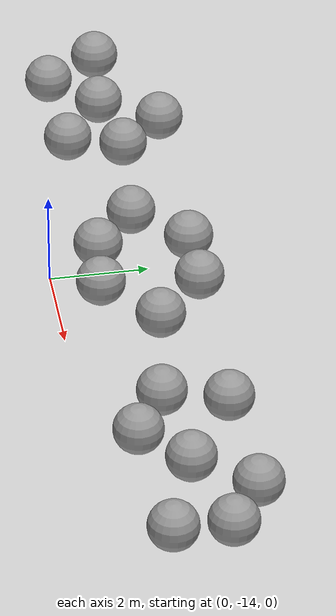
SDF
<sdf version="1.6">
 <world name="default">
  <model name="ground_plane">
   <static>1</static>
   <link name="link">
    <collision name="collision">
     <geometry><plane><normal>0 0 1</normal><size>100 100</size></plane></geometry>
     <surface>
      <contact><collide_bitmask>65535</collide_bitmask></contact>
      <friction><ode><mu>100</mu><mu2>50</mu2></ode></friction>
     </surface>
    </collision>
    <visual name="visual">
     <cast_shadows>0</cast_shadows>
     <geometry><plane><normal>0 0 1</normal><size>100 100</size></plane></geometry>
     <material>
      <script><uri>file://media/materials/scripts/gazebo.material</uri><name>Gazebo/Grey</name></script>
     </material>
    </visual>
   </link>
  </model>
  <model name="usedmap">
   <link name="link_10">
    <inertial>
     <mass>1</mass>
     <inertia><ixx>0.1</ixx><ixy>0</ixy><ixz>0</ixz><iyy>0.1</iyy><iyz>0</iyz><izz>0.1</izz></inertia>
    </inertial>
    <pose>6.74143 -8.23001 0 0 -0 0</pose>
    <visual name="visual">
     <geometry><sphere><radius>0.5</radius></sphere></geometry>
     <material>
      <lighting>1</lighting>
      <script><uri>file://media/materials/scripts/gazebo.material</uri><name>Gazebo/Grey</name></script>
     </material>
    </visual>
    <collision name="collision">
     <geometry><sphere><radius>0.5</radius></sphere></geometry>
     <surface>
      <friction>
       <ode><mu>1</mu><mu2>1</mu2><fdir1>0 0 0</fdir1><slip1>0</slip1><slip2>0</slip2></ode>
       <torsional>
        <coefficient>1</coefficient>
        <patch_radius>0</patch_radius>
        <surface_radius>0</surface_radius>
        <use_patch_radius>1</use_patch_radius>
        <ode><slip>0</slip></ode>
       </torsional>
      </friction>
      <bounce><restitution_coefficient>0</restitution_coefficient><threshold>1e+06</threshold></bounce>
      <contact>
       <collide_without_contact>0</collide_without_contact>
       <collide_without_contact_bitmask>1</collide_without_contact_bitmask>
       <collide_bitmask>1</collide_bitmask>
       <ode>
        <soft_cfm>0</soft_cfm>
        <soft_erp>0.2</soft_erp>
        <kp>1e+13</kp>
        <kd>1</kd>
        <max_vel>0.01</max_vel>
        <min_depth>0</min_depth>
       </ode>
       <bullet>
        <split_impulse>1</split_impulse>
        <split_impulse_penetration_threshold>-0.01</split_impulse_penetration_threshold>
        <soft_cfm>0</soft_cfm>
        <soft_erp>0.2</soft_erp>
        <kp>1e+13</kp>
        <kd>1</kd>
       </bullet>
      </contact>
     </surface>
    </collision>
   </link>
   <link name="link_11">
    <inertial>
     <mass>1</mass>
     <inertia><ixx>0.1</ixx><ixy>0</ixy><ixz>0</ixz><iyy>0.1</iyy><iyz>0</iyz><izz>0.1</izz></inertia>
    </inertial>
    <pose>5.84403 -9.34728 0 0 -0 0</pose>
    <visual name="visual">
     <geometry><sphere><radius>0.5</radius></sphere></geometry>
     <material>
      <lighting>1</lighting>
      <script><uri>file://media/materials/scripts/gazebo.material</uri><name>Gazebo/Grey</name></script>
     </material>
    </visual>
    <collision name="collision">
     <geometry><sphere><radius>0.5</radius></sphere></geometry>
     <surface>
      <friction>
       <ode><mu>1</mu><mu2>1</mu2><fdir1>0 0 0</fdir1><slip1>0</slip1><slip2>0</slip2></ode>
       <torsional>
        <coefficient>1</coefficient>
        <patch_radius>0</patch_radius>
        <surface_radius>0</surface_radius>
        <use_patch_radius>1</use_patch_radius>
        <ode><slip>0</slip></ode>
       </torsional>
      </friction>
      <bounce><restitution_coefficient>0</restitution_coefficient><threshold>1e+06</threshold></bounce>
      <contact>
       <collide_without_contact>0</collide_without_contact>
       <collide_without_contact_bitmask>1</collide_without_contact_bitmask>
       <collide_bitmask>1</collide_bitmask>
       <ode>
        <soft_cfm>0</soft_cfm>
        <soft_erp>0.2</soft_erp>
        <kp>1e+13</kp>
        <kd>1</kd>
        <max_vel>0.01</max_vel>
        <min_depth>0</min_depth>
       </ode>
       <bullet>
        <split_impulse>1</split_impulse>
        <split_impulse_penetration_threshold>-0.01</split_impulse_penetration_threshold>
        <soft_cfm>0</soft_cfm>
        <soft_erp>0.2</soft_erp>
        <kp>1e+13</kp>
        <kd>1</kd>
       </bullet>
      </contact>
     </surface>
    </collision>
   </link>
   <link name="link_12">
    <inertial>
     <mass>1</mass>
     <inertia><ixx>0.1</ixx><ixy>0</ixy><ixz>0</ixz><iyy>0.1</iyy><iyz>0</iyz><izz>0.1</izz></inertia>
    </inertial>
    <pose>4.90267 -10.1971 0 0 -0 0</pose>
    <visual name="visual">
     <geometry><sphere><radius>0.5</radius></sphere></geometry>
     <material>
      <lighting>1</lighting>
      <script><uri>file://media/materials/scripts/gazebo.material</uri><name>Gazebo/Grey</name></script>
     </material>
    </visual>
    <collision name="collision">
     <geometry><sphere><radius>0.5</radius></sphere></geometry>
     <surface>
      <friction>
       <ode><mu>1</mu><mu2>1</mu2><fdir1>0 0 0</fdir1><slip1>0</slip1><slip2>0</slip2></ode>
       <torsional>
        <coefficient>1</coefficient>
        <patch_radius>0</patch_radius>
        <surface_radius>0</surface_radius>
        <use_patch_radius>1</use_patch_radius>
        <ode><slip>0</slip></ode>
       </torsional>
      </friction>
      <bounce><restitution_coefficient>0</restitution_coefficient><threshold>1e+06</threshold></bounce>
      <contact>
       <collide_without_contact>0</collide_without_contact>
       <collide_without_contact_bitmask>1</collide_without_contact_bitmask>
       <collide_bitmask>1</collide_bitmask>
       <ode>
        <soft_cfm>0</soft_cfm>
        <soft_erp>0.2</soft_erp>
        <kp>1e+13</kp>
        <kd>1</kd>
        <max_vel>0.01</max_vel>
        <min_depth>0</min_depth>
       </ode>
       <bullet>
        <split_impulse>1</split_impulse>
        <split_impulse_penetration_threshold>-0.01</split_impulse_penetration_threshold>
        <soft_cfm>0</soft_cfm>
        <soft_erp>0.2</soft_erp>
        <kp>1e+13</kp>
        <kd>1</kd>
       </bullet>
      </contact>
     </surface>
    </collision>
   </link>
   <link name="link_13">
    <inertial>
     <mass>1</mass>
     <inertia><ixx>0.1</ixx><ixy>0</ixy><ixz>0</ixz><iyy>0.1</iyy><iyz>0</iyz><izz>0.1</izz></inertia>
    </inertial>
    <pose>3.83526 -9.56031 0 0 -0 0</pose>
    <visual name="visual">
     <geometry><sphere><radius>0.5</radius></sphere></geometry>
     <material>
      <lighting>1</lighting>
      <script><uri>file://media/materials/scripts/gazebo.material</uri><name>Gazebo/Grey</name></script>
     </material>
    </visual>
    <collision name="collision">
     <geometry><sphere><radius>0.5</radius></sphere></geometry>
     <surface>
      <friction>
       <ode><mu>1</mu><mu2>1</mu2><fdir1>0 0 0</fdir1><slip1>0</slip1><slip2>0</slip2></ode>
       <torsional>
        <coefficient>1</coefficient>
        <patch_radius>0</patch_radius>
        <surface_radius>0</surface_radius>
        <use_patch_radius>1</use_patch_radius>
        <ode><slip>0</slip></ode>
       </torsional>
      </friction>
      <bounce><restitution_coefficient>0</restitution_coefficient><threshold>1e+06</threshold></bounce>
      <contact>
       <collide_without_contact>0</collide_without_contact>
       <collide_without_contact_bitmask>1</collide_without_contact_bitmask>
       <collide_bitmask>1</collide_bitmask>
       <ode>
        <soft_cfm>0</soft_cfm>
        <soft_erp>0.2</soft_erp>
        <kp>1e+13</kp>
        <kd>1</kd>
        <max_vel>0.01</max_vel>
        <min_depth>0</min_depth>
       </ode>
       <bullet>
        <split_impulse>1</split_impulse>
        <split_impulse_penetration_threshold>-0.01</split_impulse_penetration_threshold>
        <soft_cfm>0</soft_cfm>
        <soft_erp>0.2</soft_erp>
        <kp>1e+13</kp>
        <kd>1</kd>
       </bullet>
      </contact>
     </surface>
    </collision>
   </link>
   <link name="link_14">
    <inertial>
     <mass>1</mass>
     <inertia><ixx>0.1</ixx><ixy>0</ixy><ixz>0</ixz><iyy>0.1</iyy><iyz>0</iyz><izz>0.1</izz></inertia>
    </inertial>
    <pose>4.20738 -8.31328 0 0 -0 0</pose>
    <visual name="visual">
     <geometry><sphere><radius>0.5</radius></sphere></geometry>
     <material>
      <lighting>1</lighting>
      <script><uri>file://media/materials/scripts/gazebo.material</uri><name>Gazebo/Grey</name></script>
     </material>
    </visual>
    <collision name="collision">
     <geometry><sphere><radius>0.5</radius></sphere></geometry>
     <surface>
      <friction>
       <ode><mu>1</mu><mu2>1</mu2><fdir1>0 0 0</fdir1><slip1>0</slip1><slip2>0</slip2></ode>
       <torsional>
        <coefficient>1</coefficient>
        <patch_radius>0</patch_radius>
        <surface_radius>0</surface_radius>
        <use_patch_radius>1</use_patch_radius>
        <ode><slip>0</slip></ode>
       </torsional>
      </friction>
      <bounce><restitution_coefficient>0</restitution_coefficient><threshold>1e+06</threshold></bounce>
      <contact>
       <collide_without_contact>0</collide_without_contact>
       <collide_without_contact_bitmask>1</collide_without_contact_bitmask>
       <collide_bitmask>1</collide_bitmask>
       <ode>
        <soft_cfm>0</soft_cfm>
        <soft_erp>0.2</soft_erp>
        <kp>1e+13</kp>
        <kd>1</kd>
        <max_vel>0.01</max_vel>
        <min_depth>0</min_depth>
       </ode>
       <bullet>
        <split_impulse>1</split_impulse>
        <split_impulse_penetration_threshold>-0.01</split_impulse_penetration_threshold>
        <soft_cfm>0</soft_cfm>
        <soft_erp>0.2</soft_erp>
        <kp>1e+13</kp>
        <kd>1</kd>
       </bullet>
      </contact>
     </surface>
    </collision>
   </link>
   <link name="link_15">
    <inertial>
     <mass>1</mass>
     <inertia><ixx>0.1</ixx><ixy>0</ixy><ixz>0</ixz><iyy>0.1</iyy><iyz>0</iyz><izz>0.1</izz></inertia>
    </inertial>
    <pose>1.47707 -9.16716 0 0 -0 0</pose>
    <visual name="visual">
     <geometry><sphere><radius>0.5</radius></sphere></geometry>
     <material>
      <lighting>1</lighting>
      <script><uri>file://media/materials/scripts/gazebo.material</uri><name>Gazebo/Grey</name></script>
     </material>
    </visual>
    <collision name="collision">
     <geometry><sphere><radius>0.5</radius></sphere></geometry>
     <surface>
      <friction>
       <ode><mu>1</mu><mu2>1</mu2><fdir1>0 0 0</fdir1><slip1>0</slip1><slip2>0</slip2></ode>
       <torsional>
        <coefficient>1</coefficient>
        <patch_radius>0</patch_radius>
        <surface_radius>0</surface_radius>
        <use_patch_radius>1</use_patch_radius>
        <ode><slip>0</slip></ode>
       </torsional>
      </friction>
      <bounce><restitution_coefficient>0</restitution_coefficient><threshold>1e+06</threshold></bounce>
      <contact>
       <collide_without_contact>0</collide_without_contact>
       <collide_without_contact_bitmask>1</collide_without_contact_bitmask>
       <collide_bitmask>1</collide_bitmask>
       <ode>
        <soft_cfm>0</soft_cfm>
        <soft_erp>0.2</soft_erp>
        <kp>1e+13</kp>
        <kd>1</kd>
        <max_vel>0.01</max_vel>
        <min_depth>0</min_depth>
       </ode>
       <bullet>
        <split_impulse>1</split_impulse>
        <split_impulse_penetration_threshold>-0.01</split_impulse_penetration_threshold>
        <soft_cfm>0</soft_cfm>
        <soft_erp>0.2</soft_erp>
        <kp>1e+13</kp>
        <kd>1</kd>
       </bullet>
      </contact>
     </surface>
    </collision>
   </link>
   <link name="link_16">
    <inertial>
     <mass>1</mass>
     <inertia><ixx>0.1</ixx><ixy>0</ixy><ixz>0</ixz><iyy>0.1</iyy><iyz>0</iyz><izz>0.1</izz></inertia>
    </inertial>
    <pose>0.394526 -8.1918 0 0 -0 0</pose>
    <visual name="visual">
     <geometry><sphere><radius>0.5</radius></sphere></geometry>
     <material>
      <lighting>1</lighting>
      <script><uri>file://media/materials/scripts/gazebo.material</uri><name>Gazebo/Grey</name></script>
     </material>
    </visual>
    <collision name="collision">
     <geometry><sphere><radius>0.5</radius></sphere></geometry>
     <surface>
      <friction>
       <ode><mu>1</mu><mu2>1</mu2><fdir1>0 0 0</fdir1><slip1>0</slip1><slip2>0</slip2></ode>
       <torsional>
        <coefficient>1</coefficient>
        <patch_radius>0</patch_radius>
        <surface_radius>0</surface_radius>
        <use_patch_radius>1</use_patch_radius>
        <ode><slip>0</slip></ode>
       </torsional>
      </friction>
      <bounce><restitution_coefficient>0</restitution_coefficient><threshold>1e+06</threshold></bounce>
      <contact>
       <collide_without_contact>0</collide_without_contact>
       <collide_without_contact_bitmask>1</collide_without_contact_bitmask>
       <collide_bitmask>1</collide_bitmask>
       <ode>
        <soft_cfm>0</soft_cfm>
        <soft_erp>0.2</soft_erp>
        <kp>1e+13</kp>
        <kd>1</kd>
        <max_vel>0.01</max_vel>
        <min_depth>0</min_depth>
       </ode>
       <bullet>
        <split_impulse>1</split_impulse>
        <split_impulse_penetration_threshold>-0.01</split_impulse_penetration_threshold>
        <soft_cfm>0</soft_cfm>
        <soft_erp>0.2</soft_erp>
        <kp>1e+13</kp>
        <kd>1</kd>
       </bullet>
      </contact>
     </surface>
    </collision>
   </link>
   <link name="link_17">
    <inertial>
     <mass>1</mass>
     <inertia><ixx>0.1</ixx><ixy>0</ixy><ixz>0</ixz><iyy>0.1</iyy><iyz>0</iyz><izz>0.1</izz></inertia>
    </inertial>
    <pose>0.267932 -10.1678 0 0 -0 0</pose>
    <visual name="visual">
     <geometry><sphere><radius>0.5</radius></sphere></geometry>
     <material>
      <lighting>1</lighting>
      <script><uri>file://media/materials/scripts/gazebo.material</uri><name>Gazebo/Grey</name></script>
     </material>
    </visual>
    <collision name="collision">
     <geometry><sphere><radius>0.5</radius></sphere></geometry>
     <surface>
      <friction>
       <ode><mu>1</mu><mu2>1</mu2><fdir1>0 0 0</fdir1><slip1>0</slip1><slip2>0</slip2></ode>
       <torsional>
        <coefficient>1</coefficient>
        <patch_radius>0</patch_radius>
        <surface_radius>0</surface_radius>
        <use_patch_radius>1</use_patch_radius>
        <ode><slip>0</slip></ode>
       </torsional>
      </friction>
      <bounce><restitution_coefficient>0</restitution_coefficient><threshold>1e+06</threshold></bounce>
      <contact>
       <collide_without_contact>0</collide_without_contact>
       <collide_without_contact_bitmask>1</collide_without_contact_bitmask>
       <collide_bitmask>1</collide_bitmask>
       <ode>
        <soft_cfm>0</soft_cfm>
        <soft_erp>0.2</soft_erp>
        <kp>1e+13</kp>
        <kd>1</kd>
        <max_vel>0.01</max_vel>
        <min_depth>0</min_depth>
       </ode>
       <bullet>
        <split_impulse>1</split_impulse>
        <split_impulse_penetration_threshold>-0.01</split_impulse_penetration_threshold>
        <soft_cfm>0</soft_cfm>
        <soft_erp>0.2</soft_erp>
        <kp>1e+13</kp>
        <kd>1</kd>
       </bullet>
      </contact>
     </surface>
    </collision>
   </link>
   <link name="link_20">
    <inertial>
     <mass>1</mass>
     <inertia><ixx>0.1</ixx><ixy>0</ixy><ixz>0</ixz><iyy>0.1</iyy><iyz>0</iyz><izz>0.1</izz></inertia>
    </inertial>
    <pose>-0.984284 -10.0243 0 0 -0 0</pose>
    <visual name="visual">
     <geometry><sphere><radius>0.5</radius></sphere></geometry>
     <material>
      <lighting>1</lighting>
      <script><uri>file://media/materials/scripts/gazebo.material</uri><name>Gazebo/Grey</name></script>
     </material>
    </visual>
    <collision name="collision">
     <geometry><sphere><radius>0.5</radius></sphere></geometry>
     <surface>
      <friction>
       <ode><mu>1</mu><mu2>1</mu2><fdir1>0 0 0</fdir1><slip1>0</slip1><slip2>0</slip2></ode>
       <torsional>
        <coefficient>1</coefficient>
        <patch_radius>0</patch_radius>
        <surface_radius>0</surface_radius>
        <use_patch_radius>1</use_patch_radius>
        <ode><slip>0</slip></ode>
       </torsional>
      </friction>
      <bounce><restitution_coefficient>0</restitution_coefficient><threshold>1e+06</threshold></bounce>
      <contact>
       <collide_without_contact>0</collide_without_contact>
       <collide_without_contact_bitmask>1</collide_without_contact_bitmask>
       <collide_bitmask>1</collide_bitmask>
       <ode>
        <soft_cfm>0</soft_cfm>
        <soft_erp>0.2</soft_erp>
        <kp>1e+13</kp>
        <kd>1</kd>
        <max_vel>0.01</max_vel>
        <min_depth>0</min_depth>
       </ode>
       <bullet>
        <split_impulse>1</split_impulse>
        <split_impulse_penetration_threshold>-0.01</split_impulse_penetration_threshold>
        <soft_cfm>0</soft_cfm>
        <soft_erp>0.2</soft_erp>
        <kp>1e+13</kp>
        <kd>1</kd>
       </bullet>
      </contact>
     </surface>
    </collision>
   </link>
   <link name="link_21">
    <inertial>
     <mass>1</mass>
     <inertia><ixx>0.1</ixx><ixy>0</ixy><ixz>0</ixz><iyy>0.1</iyy><iyz>0</iyz><izz>0.1</izz></inertia>
    </inertial>
    <pose>-1.96242 -9.18554 0 0 -0 0</pose>
    <visual name="visual">
     <geometry><sphere><radius>0.5</radius></sphere></geometry>
     <material>
      <lighting>1</lighting>
      <script><uri>file://media/materials/scripts/gazebo.material</uri><name>Gazebo/Grey</name></script>
     </material>
    </visual>
    <collision name="collision">
     <geometry><sphere><radius>0.5</radius></sphere></geometry>
     <surface>
      <friction>
       <ode><mu>1</mu><mu2>1</mu2><fdir1>0 0 0</fdir1><slip1>0</slip1><slip2>0</slip2></ode>
       <torsional>
        <coefficient>1</coefficient>
        <patch_radius>0</patch_radius>
        <surface_radius>0</surface_radius>
        <use_patch_radius>1</use_patch_radius>
        <ode><slip>0</slip></ode>
       </torsional>
      </friction>
      <bounce><restitution_coefficient>0</restitution_coefficient><threshold>1e+06</threshold></bounce>
      <contact>
       <collide_without_contact>0</collide_without_contact>
       <collide_without_contact_bitmask>1</collide_without_contact_bitmask>
       <collide_bitmask>1</collide_bitmask>
       <ode>
        <soft_cfm>0</soft_cfm>
        <soft_erp>0.2</soft_erp>
        <kp>1e+13</kp>
        <kd>1</kd>
        <max_vel>0.01</max_vel>
        <min_depth>0</min_depth>
       </ode>
       <bullet>
        <split_impulse>1</split_impulse>
        <split_impulse_penetration_threshold>-0.01</split_impulse_penetration_threshold>
        <soft_cfm>0</soft_cfm>
        <soft_erp>0.2</soft_erp>
        <kp>1e+13</kp>
        <kd>1</kd>
       </bullet>
      </contact>
     </surface>
    </collision>
   </link>
   <link name="link_22">
    <inertial>
     <mass>1</mass>
     <inertia><ixx>0.1</ixx><ixy>0</ixy><ixz>0</ixz><iyy>0.1</iyy><iyz>0</iyz><izz>0.1</izz></inertia>
    </inertial>
    <pose>-0.927433 -8.17566 0 0 -0 0</pose>
    <visual name="visual">
     <geometry><sphere><radius>0.5</radius></sphere></geometry>
     <material>
      <lighting>1</lighting>
      <script><uri>file://media/materials/scripts/gazebo.material</uri><name>Gazebo/Grey</name></script>
     </material>
    </visual>
    <collision name="collision">
     <geometry><sphere><radius>0.5</radius></sphere></geometry>
     <surface>
      <friction>
       <ode><mu>1</mu><mu2>1</mu2><fdir1>0 0 0</fdir1><slip1>0</slip1><slip2>0</slip2></ode>
       <torsional>
        <coefficient>1</coefficient>
        <patch_radius>0</patch_radius>
        <surface_radius>0</surface_radius>
        <use_patch_radius>1</use_patch_radius>
        <ode><slip>0</slip></ode>
       </torsional>
      </friction>
      <bounce><restitution_coefficient>0</restitution_coefficient><threshold>1e+06</threshold></bounce>
      <contact>
       <collide_without_contact>0</collide_without_contact>
       <collide_without_contact_bitmask>1</collide_without_contact_bitmask>
       <collide_bitmask>1</collide_bitmask>
       <ode>
        <soft_cfm>0</soft_cfm>
        <soft_erp>0.2</soft_erp>
        <kp>1e+13</kp>
        <kd>1</kd>
        <max_vel>0.01</max_vel>
        <min_depth>0</min_depth>
       </ode>
       <bullet>
        <split_impulse>1</split_impulse>
        <split_impulse_penetration_threshold>-0.01</split_impulse_penetration_threshold>
        <soft_cfm>0</soft_cfm>
        <soft_erp>0.2</soft_erp>
        <kp>1e+13</kp>
        <kd>1</kd>
       </bullet>
      </contact>
     </surface>
    </collision>
   </link>
   <link name="link_23">
    <inertial>
     <mass>1</mass>
     <inertia><ixx>0.1</ixx><ixy>0</ixy><ixz>0</ixz><iyy>0.1</iyy><iyz>0</iyz><izz>0.1</izz></inertia>
    </inertial>
    <pose>-4.32819 -8.95262 0 0 -0 0</pose>
    <visual name="visual">
     <geometry><sphere><radius>0.5</radius></sphere></geometry>
     <material>
      <lighting>1</lighting>
      <script><uri>file://media/materials/scripts/gazebo.material</uri><name>Gazebo/Grey</name></script>
     </material>
    </visual>
    <collision name="collision">
     <geometry><sphere><radius>0.5</radius></sphere></geometry>
     <surface>
      <friction>
       <ode><mu>1</mu><mu2>1</mu2><fdir1>0 0 0</fdir1><slip1>0</slip1><slip2>0</slip2></ode>
       <torsional>
        <coefficient>1</coefficient>
        <patch_radius>0</patch_radius>
        <surface_radius>0</surface_radius>
        <use_patch_radius>1</use_patch_radius>
        <ode><slip>0</slip></ode>
       </torsional>
      </friction>
      <bounce><restitution_coefficient>0</restitution_coefficient><threshold>1e+06</threshold></bounce>
      <contact>
       <collide_without_contact>0</collide_without_contact>
       <collide_without_contact_bitmask>1</collide_without_contact_bitmask>
       <collide_bitmask>1</collide_bitmask>
       <ode>
        <soft_cfm>0</soft_cfm>
        <soft_erp>0.2</soft_erp>
        <kp>1e+13</kp>
        <kd>1</kd>
        <max_vel>0.01</max_vel>
        <min_depth>0</min_depth>
       </ode>
       <bullet>
        <split_impulse>1</split_impulse>
        <split_impulse_penetration_threshold>-0.01</split_impulse_penetration_threshold>
        <soft_cfm>0</soft_cfm>
        <soft_erp>0.2</soft_erp>
        <kp>1e+13</kp>
        <kd>1</kd>
       </bullet>
      </contact>
     </surface>
    </collision>
   </link>
   <link name="link_24">
    <inertial>
     <mass>1</mass>
     <inertia><ixx>0.1</ixx><ixy>0</ixy><ixz>0</ixz><iyy>0.1</iyy><iyz>0</iyz><izz>0.1</izz></inertia>
    </inertial>
    <pose>-4.70582 -10.0665 0 0 -0 0</pose>
    <visual name="visual">
     <geometry><sphere><radius>0.5</radius></sphere></geometry>
     <material>
      <lighting>1</lighting>
      <script><uri>file://media/materials/scripts/gazebo.material</uri><name>Gazebo/Grey</name></script>
     </material>
    </visual>
    <collision name="collision">
     <geometry><sphere><radius>0.5</radius></sphere></geometry>
     <surface>
      <friction>
       <ode><mu>1</mu><mu2>1</mu2><fdir1>0 0 0</fdir1><slip1>0</slip1><slip2>0</slip2></ode>
       <torsional>
        <coefficient>1</coefficient>
        <patch_radius>0</patch_radius>
        <surface_radius>0</surface_radius>
        <use_patch_radius>1</use_patch_radius>
        <ode><slip>0</slip></ode>
       </torsional>
      </friction>
      <bounce><restitution_coefficient>0</restitution_coefficient><threshold>1e+06</threshold></bounce>
      <contact>
       <collide_without_contact>0</collide_without_contact>
       <collide_without_contact_bitmask>1</collide_without_contact_bitmask>
       <collide_bitmask>1</collide_bitmask>
       <ode>
        <soft_cfm>0</soft_cfm>
        <soft_erp>0.2</soft_erp>
        <kp>1e+13</kp>
        <kd>1</kd>
        <max_vel>0.01</max_vel>
        <min_depth>0</min_depth>
       </ode>
       <bullet>
        <split_impulse>1</split_impulse>
        <split_impulse_penetration_threshold>-0.01</split_impulse_penetration_threshold>
        <soft_cfm>0</soft_cfm>
        <soft_erp>0.2</soft_erp>
        <kp>1e+13</kp>
        <kd>1</kd>
       </bullet>
      </contact>
     </surface>
    </collision>
   </link>
   <link name="link_25">
    <inertial>
     <mass>1</mass>
     <inertia><ixx>0.1</ixx><ixy>0</ixy><ixz>0</ixz><iyy>0.1</iyy><iyz>0</iyz><izz>0.1</izz></inertia>
    </inertial>
    <pose>-5.12604 -8.04998 0 0 -0 0</pose>
    <visual name="visual">
     <geometry><sphere><radius>0.5</radius></sphere></geometry>
     <material>
      <lighting>1</lighting>
      <script><uri>file://media/materials/scripts/gazebo.material</uri><name>Gazebo/Grey</name></script>
     </material>
    </visual>
    <collision name="collision">
     <geometry><sphere><radius>0.5</radius></sphere></geometry>
     <surface>
      <friction>
       <ode><mu>1</mu><mu2>1</mu2><fdir1>0 0 0</fdir1><slip1>0</slip1><slip2>0</slip2></ode>
       <torsional>
        <coefficient>1</coefficient>
        <patch_radius>0</patch_radius>
        <surface_radius>0</surface_radius>
        <use_patch_radius>1</use_patch_radius>
        <ode><slip>0</slip></ode>
       </torsional>
      </friction>
      <bounce><restitution_coefficient>0</restitution_coefficient><threshold>1e+06</threshold></bounce>
      <contact>
       <collide_without_contact>0</collide_without_contact>
       <collide_without_contact_bitmask>1</collide_without_contact_bitmask>
       <collide_bitmask>1</collide_bitmask>
       <ode>
        <soft_cfm>0</soft_cfm>
        <soft_erp>0.2</soft_erp>
        <kp>1e+13</kp>
        <kd>1</kd>
        <max_vel>0.01</max_vel>
        <min_depth>0</min_depth>
       </ode>
       <bullet>
        <split_impulse>1</split_impulse>
        <split_impulse_penetration_threshold>-0.01</split_impulse_penetration_threshold>
        <soft_cfm>0</soft_cfm>
        <soft_erp>0.2</soft_erp>
        <kp>1e+13</kp>
        <kd>1</kd>
       </bullet>
      </contact>
     </surface>
    </collision>
   </link>
   <link name="link_26">
    <inertial>
     <mass>1</mass>
     <inertia><ixx>0.1</ixx><ixy>0</ixy><ixz>0</ixz><iyy>0.1</iyy><iyz>0</iyz><izz>0.1</izz></inertia>
    </inertial>
    <pose>-5.92984 -9.21674 0 0 -0 0</pose>
    <visual name="visual">
     <geometry><sphere><radius>0.5</radius></sphere></geometry>
     <material>
      <lighting>1</lighting>
      <script><uri>file://media/materials/scripts/gazebo.material</uri><name>Gazebo/Grey</name></script>
     </material>
    </visual>
    <collision name="collision">
     <geometry><sphere><radius>0.5</radius></sphere></geometry>
     <surface>
      <friction>
       <ode><mu>1</mu><mu2>1</mu2><fdir1>0 0 0</fdir1><slip1>0</slip1><slip2>0</slip2></ode>
       <torsional>
        <coefficient>1</coefficient>
        <patch_radius>0</patch_radius>
        <surface_radius>0</surface_radius>
        <use_patch_radius>1</use_patch_radius>
        <ode><slip>0</slip></ode>
       </torsional>
      </friction>
      <bounce><restitution_coefficient>0</restitution_coefficient><threshold>1e+06</threshold></bounce>
      <contact>
       <collide_without_contact>0</collide_without_contact>
       <collide_without_contact_bitmask>1</collide_without_contact_bitmask>
       <collide_bitmask>1</collide_bitmask>
       <ode>
        <soft_cfm>0</soft_cfm>
        <soft_erp>0.2</soft_erp>
        <kp>1e+13</kp>
        <kd>1</kd>
        <max_vel>0.01</max_vel>
        <min_depth>0</min_depth>
       </ode>
       <bullet>
        <split_impulse>1</split_impulse>
        <split_impulse_penetration_threshold>-0.01</split_impulse_penetration_threshold>
        <soft_cfm>0</soft_cfm>
        <soft_erp>0.2</soft_erp>
        <kp>1e+13</kp>
        <kd>1</kd>
       </bullet>
      </contact>
     </surface>
    </collision>
   </link>
   <link name="link_27">
    <inertial>
     <mass>1</mass>
     <inertia><ixx>0.1</ixx><ixy>0</ixy><ixz>0</ixz><iyy>0.1</iyy><iyz>0</iyz><izz>0.1</izz></inertia>
    </inertial>
    <pose>-6.86562 -10.1499 0 0 -0 0</pose>
    <visual name="visual">
     <geometry><sphere><radius>0.5</radius></sphere></geometry>
     <material>
      <lighting>1</lighting>
      <script><uri>file://media/materials/scripts/gazebo.material</uri><name>Gazebo/Grey</name></script>
     </material>
    </visual>
    <collision name="collision">
     <geometry><sphere><radius>0.5</radius></sphere></geometry>
     <surface>
      <friction>
       <ode><mu>1</mu><mu2>1</mu2><fdir1>0 0 0</fdir1><slip1>0</slip1><slip2>0</slip2></ode>
       <torsional>
        <coefficient>1</coefficient>
        <patch_radius>0</patch_radius>
        <surface_radius>0</surface_radius>
        <use_patch_radius>1</use_patch_radius>
        <ode><slip>0</slip></ode>
       </torsional>
      </friction>
      <bounce><restitution_coefficient>0</restitution_coefficient><threshold>1e+06</threshold></bounce>
      <contact>
       <collide_without_contact>0</collide_without_contact>
       <collide_without_contact_bitmask>1</collide_without_contact_bitmask>
       <collide_bitmask>1</collide_bitmask>
       <ode>
        <soft_cfm>0</soft_cfm>
        <soft_erp>0.2</soft_erp>
        <kp>1e+13</kp>
        <kd>1</kd>
        <max_vel>0.01</max_vel>
        <min_depth>0</min_depth>
       </ode>
       <bullet>
        <split_impulse>1</split_impulse>
        <split_impulse_penetration_threshold>-0.01</split_impulse_penetration_threshold>
        <soft_cfm>0</soft_cfm>
        <soft_erp>0.2</soft_erp>
        <kp>1e+13</kp>
        <kd>1</kd>
       </bullet>
      </contact>
     </surface>
    </collision>
   </link>
   <link name="link_28">
    <inertial>
     <mass>1</mass>
     <inertia><ixx>0.1</ixx><ixy>0</ixy><ixz>0</ixz><iyy>0.1</iyy><iyz>0</iyz><izz>0.1</izz></inertia>
    </inertial>
    <pose>-7.60502 -9.04078 0 0 -0 0</pose>
    <visual name="visual">
     <geometry><sphere><radius>0.5</radius></sphere></geometry>
     <material>
      <lighting>1</lighting>
      <script><uri>file://media/materials/scripts/gazebo.material</uri><name>Gazebo/Grey</name></script>
     </material>
    </visual>
    <collision name="collision">
     <geometry><sphere><radius>0.5</radius></sphere></geometry>
     <surface>
      <friction>
       <ode><mu>1</mu><mu2>1</mu2><fdir1>0 0 0</fdir1><slip1>0</slip1><slip2>0</slip2></ode>
       <torsional>
        <coefficient>1</coefficient>
        <patch_radius>0</patch_radius>
        <surface_radius>0</surface_radius>
        <use_patch_radius>1</use_patch_radius>
        <ode><slip>0</slip></ode>
       </torsional>
      </friction>
      <bounce><restitution_coefficient>0</restitution_coefficient><threshold>1e+06</threshold></bounce>
      <contact>
       <collide_without_contact>0</collide_without_contact>
       <collide_without_contact_bitmask>1</collide_without_contact_bitmask>
       <collide_bitmask>1</collide_bitmask>
       <ode>
        <soft_cfm>0</soft_cfm>
        <soft_erp>0.2</soft_erp>
        <kp>1e+13</kp>
        <kd>1</kd>
        <max_vel>0.01</max_vel>
        <min_depth>0</min_depth>
       </ode>
       <bullet>
        <split_impulse>1</split_impulse>
        <split_impulse_penetration_threshold>-0.01</split_impulse_penetration_threshold>
        <soft_cfm>0</soft_cfm>
        <soft_erp>0.2</soft_erp>
        <kp>1e+13</kp>
        <kd>1</kd>
       </bullet>
      </contact>
     </surface>
    </collision>
   </link>
   <link name="link_8">
    <inertial>
     <mass>1</mass>
     <inertia><ixx>0.1</ixx><ixy>0</ixy><ixz>0</ixz><iyy>0.1</iyy><iyz>0</iyz><izz>0.1</izz></inertia>
    </inertial>
    <pose>7.72385 -10.0244 0 0 -0 0</pose>
    <visual name="visual">
     <geometry><sphere><radius>0.5</radius></sphere></geometry>
     <material>
      <lighting>1</lighting>
      <script><uri>file://media/materials/scripts/gazebo.material</uri><name>Gazebo/Grey</name></script>
     </material>
    </visual>
    <collision name="collision">
     <geometry><sphere><radius>0.5</radius></sphere></geometry>
     <surface>
      <friction>
       <ode><mu>1</mu><mu2>1</mu2><fdir1>0 0 0</fdir1><slip1>0</slip1><slip2>0</slip2></ode>
       <torsional>
        <coefficient>1</coefficient>
        <patch_radius>0</patch_radius>
        <surface_radius>0</surface_radius>
        <use_patch_radius>1</use_patch_radius>
        <ode><slip>0</slip></ode>
       </torsional>
      </friction>
      <bounce><restitution_coefficient>0</restitution_coefficient><threshold>1e+06</threshold></bounce>
      <contact>
       <collide_without_contact>0</collide_without_contact>
       <collide_without_contact_bitmask>1</collide_without_contact_bitmask>
       <collide_bitmask>1</collide_bitmask>
       <ode>
        <soft_cfm>0</soft_cfm>
        <soft_erp>0.2</soft_erp>
        <kp>1e+13</kp>
        <kd>1</kd>
        <max_vel>0.01</max_vel>
        <min_depth>0</min_depth>
       </ode>
       <bullet>
        <split_impulse>1</split_impulse>
        <split_impulse_penetration_threshold>-0.01</split_impulse_penetration_threshold>
        <soft_cfm>0</soft_cfm>
        <soft_erp>0.2</soft_erp>
        <kp>1e+13</kp>
        <kd>1</kd>
       </bullet>
      </contact>
     </surface>
    </collision>
   </link>
   <link name="link_9">
    <inertial>
     <mass>1</mass>
     <inertia><ixx>0.1</ixx><ixy>0</ixy><ixz>0</ixz><iyy>0.1</iyy><iyz>0</iyz><izz>0.1</izz></inertia>
    </inertial>
    <pose>7.76285 -8.89487 0 0 -0 0</pose>
    <visual name="visual">
     <geometry><sphere><radius>0.5</radius></sphere></geometry>
     <material>
      <lighting>1</lighting>
      <script><uri>file://media/materials/scripts/gazebo.material</uri><name>Gazebo/Grey</name></script>
     </material>
    </visual>
    <collision name="collision">
     <geometry><sphere><radius>0.5</radius></sphere></geometry>
     <surface>
      <friction>
       <ode><mu>1</mu><mu2>1</mu2><fdir1>0 0 0</fdir1><slip1>0</slip1><slip2>0</slip2></ode>
       <torsional>
        <coefficient>1</coefficient>
        <patch_radius>0</patch_radius>
        <surface_radius>0</surface_radius>
        <use_patch_radius>1</use_patch_radius>
        <ode><slip>0</slip></ode>
       </torsional>
      </friction>
      <bounce><restitution_coefficient>0</restitution_coefficient><threshold>1e+06</threshold></bounce>
      <contact>
       <collide_without_contact>0</collide_without_contact>
       <collide_without_contact_bitmask>1</collide_without_contact_bitmask>
       <collide_bitmask>1</collide_bitmask>
       <ode>
        <soft_cfm>0</soft_cfm>
        <soft_erp>0.2</soft_erp>
        <kp>1e+13</kp>
        <kd>1</kd>
        <max_vel>0.01</max_vel>
        <min_depth>0</min_depth>
       </ode>
       <bullet>
        <split_impulse>1</split_impulse>
        <split_impulse_penetration_threshold>-0.01</split_impulse_penetration_threshold>
        <soft_cfm>0</soft_cfm>
        <soft_erp>0.2</soft_erp>
        <kp>1e+13</kp>
        <kd>1</kd>
       </bullet>
      </contact>
     </surface>
    </collision>
   </link>
   <static>0</static>
   <pose>0.585943 -2.92529 0.5 0 -0 0</pose>
  </model>
 </world>
</sdf>
